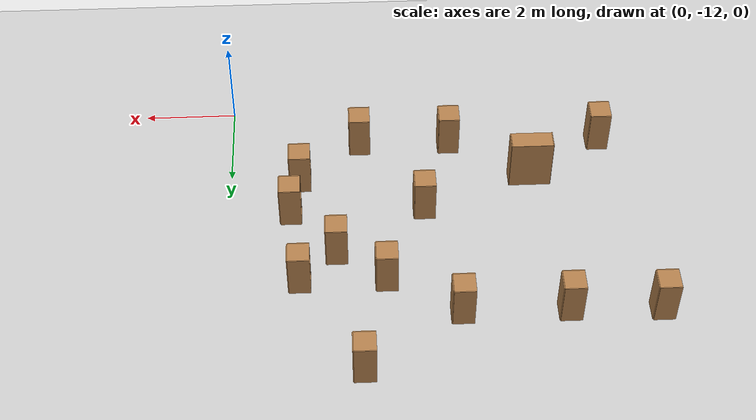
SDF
<sdf version="1.6">
 <world name="default">
  <model name="ground_plane">
   <static>1</static>
   <link name="link">
    <collision name="collision">
     <geometry><plane><normal>0 0 1</normal><size>100 100</size></plane></geometry>
     <surface><friction><ode><mu>100</mu><mu2>50</mu2></ode></friction></surface>
    </collision>
    <visual name="visual">
     <cast_shadows>0</cast_shadows>
     <geometry><plane><normal>0 0 1</normal><size>100 100</size></plane></geometry>
     <material>
      <script><uri>file://media/materials/scripts/gazebo.material</uri><name>Gazebo/Grey</name></script>
     </material>
    </visual>
   </link>
  </model>
  <model name="cabinet">
   <static>1</static>
   <link name="cabinet_bottom_plate">
    <inertial>
     <pose>0 0 -1 0 -0 0</pose>
     <inertia><ixx>2.05</ixx><ixy>0</ixy><ixz>0</ixz><iyy>2.05</iyy><iyz>0</iyz><izz>2.05</izz></inertia>
     <mass>25</mass>
    </inertial>
    <collision name="cabinet_bottom_plate_geom">
     <pose>0 0 0.01 0 -0 0</pose>
     <geometry><box><size>0.45 0.45 0.02</size></box></geometry>
    </collision>
    <visual name="cabinet_bottom_plate_geom_visual">
     <pose>0 0 0.01 0 -0 0</pose>
     <geometry><box><size>0.45 0.45 0.02</size></box></geometry>
     <material>
      <script><uri>file://media/materials/scripts/gazebo.material</uri><name>Gazebo/Wood</name></script>
     </material>
    </visual>
    <collision name="cabinet_bottom_plate_geom_cabinet_back_plate">
     <pose>0.235 0 0.51 0 -0 0</pose>
     <geometry><box><size>0.02 0.45 1.02</size></box></geometry>
    </collision>
    <visual name="cabinet_bottom_plate_geom_cabinet_back_plate_visual">
     <pose>0.235 0 0.51 0 -0 0</pose>
     <geometry><box><size>0.02 0.45 1.02</size></box></geometry>
     <material>
      <script><uri>file://media/materials/scripts/gazebo.material</uri><name>Gazebo/Wood</name></script>
     </material>
    </visual>
    <collision name="cabinet_bottom_plate_geom_cabinet_left_plate">
     <pose>0 0.235 0.51 0 -0 0</pose>
     <geometry><box><size>0.45 0.02 1.02</size></box></geometry>
    </collision>
    <visual name="cabinet_bottom_plate_geom_cabinet_left_plate_visual">
     <pose>0 0.235 0.51 0 -0 0</pose>
     <geometry><box><size>0.45 0.02 1.02</size></box></geometry>
     <material>
      <script><uri>file://media/materials/scripts/gazebo.material</uri><name>Gazebo/Wood</name></script>
     </material>
    </visual>
    <collision name="cabinet_bottom_plate_geom_cabinet_middle_plate">
     <pose>0 0 0.51 0 -0 0</pose>
     <geometry><box><size>0.45 0.45 0.02</size></box></geometry>
    </collision>
    <visual name="cabinet_bottom_plate_geom_cabinet_middle_plate_visual">
     <pose>0 0 0.51 0 -0 0</pose>
     <geometry><box><size>0.45 0.45 0.02</size></box></geometry>
     <material>
      <script><uri>file://media/materials/scripts/gazebo.material</uri><name>Gazebo/Wood</name></script>
     </material>
    </visual>
    <collision name="cabinet_bottom_plate_geom_cabinet_right_plate">
     <pose>0 -0.235 0.51 0 -0 0</pose>
     <geometry><box><size>0.45 0.02 1.02</size></box></geometry>
    </collision>
    <visual name="cabinet_bottom_plate_geom_cabinet_right_plate_visual">
     <pose>0 -0.235 0.51 0 -0 0</pose>
     <geometry><box><size>0.45 0.02 1.02</size></box></geometry>
     <material>
      <script><uri>file://media/materials/scripts/gazebo.material</uri><name>Gazebo/Wood</name></script>
     </material>
    </visual>
    <collision name="cabinet_bottom_plate_geom_cabinet_top_plate">
     <pose>0 0 1.01 0 -0 0</pose>
     <geometry><box><size>0.45 0.45 0.02</size></box></geometry>
    </collision>
    <visual name="cabinet_bottom_plate_geom_cabinet_top_plate_visual">
     <pose>0 0 1.01 0 -0 0</pose>
     <geometry><box><size>0.45 0.45 0.02</size></box></geometry>
     <material>
      <script><uri>file://media/materials/scripts/gazebo.material</uri><name>Gazebo/Wood</name></script>
     </material>
    </visual>
   </link>
   <pose>-8.18093 -10.8417 0 0 -0 0</pose>
  </model>
  <model name="bookshelf">
   <static>1</static>
   <link name="link">
    <inertial><mass>1</mass></inertial>
    <collision name="back">
     <pose>0 0.005 0.6 0 -0 0</pose>
     <geometry><box><size>0.9 0.01 1.2</size></box></geometry>
    </collision>
    <visual name="visual1">
     <pose>0 0.005 0.6 0 -0 0</pose>
     <geometry><box><size>0.9 0.01 1.2</size></box></geometry>
     <material>
      <script><uri>file://media/materials/scripts/gazebo.material</uri><name>Gazebo/Wood</name></script>
     </material>
    </visual>
    <collision name="left_side">
     <pose>0.45 -0.195 0.6 0 -0 0</pose>
     <geometry><box><size>0.02 0.4 1.2</size></box></geometry>
    </collision>
    <visual name="visual2">
     <pose>0.45 -0.195 0.6 0 -0 0</pose>
     <geometry><box><size>0.02 0.4 1.2</size></box></geometry>
     <material>
      <script><uri>file://media/materials/scripts/gazebo.material</uri><name>Gazebo/Wood</name></script>
     </material>
    </visual>
    <collision name="right_side">
     <pose>-0.45 -0.195 0.6 0 -0 0</pose>
     <geometry><box><size>0.02 0.4 1.2</size></box></geometry>
    </collision>
    <visual name="visual3">
     <pose>-0.45 -0.195 0.6 0 -0 0</pose>
     <geometry><box><size>0.02 0.4 1.2</size></box></geometry>
     <material>
      <script><uri>file://media/materials/scripts/gazebo.material</uri><name>Gazebo/Wood</name></script>
     </material>
    </visual>
    <collision name="bottom">
     <pose>0 -0.195 0.03 0 -0 0</pose>
     <geometry><box><size>0.88 0.4 0.06</size></box></geometry>
    </collision>
    <visual name="visual4">
     <pose>0 -0.195 0.03 0 -0 0</pose>
     <geometry><box><size>0.88 0.4 0.06</size></box></geometry>
     <material>
      <script><uri>file://media/materials/scripts/gazebo.material</uri><name>Gazebo/Wood</name></script>
     </material>
    </visual>
    <collision name="top">
     <pose>0 -0.195 1.19 0 -0 0</pose>
     <geometry><box><size>0.88 0.4 0.02</size></box></geometry>
    </collision>
    <visual name="visual5">
     <pose>0 -0.195 1.19 0 -0 0</pose>
     <geometry><box><size>0.88 0.4 0.02</size></box></geometry>
     <material>
      <script><uri>file://media/materials/scripts/gazebo.material</uri><name>Gazebo/Wood</name></script>
     </material>
    </visual>
    <collision name="low_shelf">
     <pose>0 -0.195 0.43 0 -0 0</pose>
     <geometry><box><size>0.88 0.4 0.02</size></box></geometry>
    </collision>
    <visual name="visual6">
     <pose>0 -0.195 0.43 0 -0 0</pose>
     <geometry><box><size>0.88 0.4 0.02</size></box></geometry>
     <material>
      <script><uri>file://media/materials/scripts/gazebo.material</uri><name>Gazebo/Wood</name></script>
     </material>
    </visual>
    <collision name="high_shelf">
     <pose>0 -0.195 0.8 0 -0 0</pose>
     <geometry><box><size>0.88 0.4 0.02</size></box></geometry>
    </collision>
    <visual name="visual7">
     <pose>0 -0.195 0.8 0 -0 0</pose>
     <geometry><box><size>0.88 0.4 0.02</size></box></geometry>
     <material>
      <script><uri>file://media/materials/scripts/gazebo.material</uri><name>Gazebo/Wood</name></script>
     </material>
    </visual>
   </link>
   <pose>-6.54125 -9.57718 0 0 -0 0</pose>
  </model>
  <model name="cabinet_0">
   <static>1</static>
   <link name="cabinet_bottom_plate">
    <inertial>
     <pose>0 0 -1 0 -0 0</pose>
     <inertia><ixx>2.05</ixx><ixy>0</ixy><ixz>0</ixz><iyy>2.05</iyy><iyz>0</iyz><izz>2.05</izz></inertia>
     <mass>25</mass>
    </inertial>
    <collision name="cabinet_bottom_plate_geom">
     <pose>0 0 0.01 0 -0 0</pose>
     <geometry><box><size>0.45 0.45 0.02</size></box></geometry>
    </collision>
    <visual name="cabinet_bottom_plate_geom_visual">
     <pose>0 0 0.01 0 -0 0</pose>
     <geometry><box><size>0.45 0.45 0.02</size></box></geometry>
     <material>
      <script><uri>file://media/materials/scripts/gazebo.material</uri><name>Gazebo/Wood</name></script>
     </material>
    </visual>
    <collision name="cabinet_bottom_plate_geom_cabinet_back_plate">
     <pose>0.235 0 0.51 0 -0 0</pose>
     <geometry><box><size>0.02 0.45 1.02</size></box></geometry>
    </collision>
    <visual name="cabinet_bottom_plate_geom_cabinet_back_plate_visual">
     <pose>0.235 0 0.51 0 -0 0</pose>
     <geometry><box><size>0.02 0.45 1.02</size></box></geometry>
     <material>
      <script><uri>file://media/materials/scripts/gazebo.material</uri><name>Gazebo/Wood</name></script>
     </material>
    </visual>
    <collision name="cabinet_bottom_plate_geom_cabinet_left_plate">
     <pose>0 0.235 0.51 0 -0 0</pose>
     <geometry><box><size>0.45 0.02 1.02</size></box></geometry>
    </collision>
    <visual name="cabinet_bottom_plate_geom_cabinet_left_plate_visual">
     <pose>0 0.235 0.51 0 -0 0</pose>
     <geometry><box><size>0.45 0.02 1.02</size></box></geometry>
     <material>
      <script><uri>file://media/materials/scripts/gazebo.material</uri><name>Gazebo/Wood</name></script>
     </material>
    </visual>
    <collision name="cabinet_bottom_plate_geom_cabinet_middle_plate">
     <pose>0 0 0.51 0 -0 0</pose>
     <geometry><box><size>0.45 0.45 0.02</size></box></geometry>
    </collision>
    <visual name="cabinet_bottom_plate_geom_cabinet_middle_plate_visual">
     <pose>0 0 0.51 0 -0 0</pose>
     <geometry><box><size>0.45 0.45 0.02</size></box></geometry>
     <material>
      <script><uri>file://media/materials/scripts/gazebo.material</uri><name>Gazebo/Wood</name></script>
     </material>
    </visual>
    <collision name="cabinet_bottom_plate_geom_cabinet_right_plate">
     <pose>0 -0.235 0.51 0 -0 0</pose>
     <geometry><box><size>0.45 0.02 1.02</size></box></geometry>
    </collision>
    <visual name="cabinet_bottom_plate_geom_cabinet_right_plate_visual">
     <pose>0 -0.235 0.51 0 -0 0</pose>
     <geometry><box><size>0.45 0.02 1.02</size></box></geometry>
     <material>
      <script><uri>file://media/materials/scripts/gazebo.material</uri><name>Gazebo/Wood</name></script>
     </material>
    </visual>
    <collision name="cabinet_bottom_plate_geom_cabinet_top_plate">
     <pose>0 0 1.01 0 -0 0</pose>
     <geometry><box><size>0.45 0.45 0.02</size></box></geometry>
    </collision>
    <visual name="cabinet_bottom_plate_geom_cabinet_top_plate_visual">
     <pose>0 0 1.01 0 -0 0</pose>
     <geometry><box><size>0.45 0.45 0.02</size></box></geometry>
     <material>
      <script><uri>file://media/materials/scripts/gazebo.material</uri><name>Gazebo/Wood</name></script>
     </material>
    </visual>
   </link>
   <pose>-4.82674 -10.8507 0 0 -0 0</pose>
  </model>
  <model name="cabinet_1">
   <static>1</static>
   <link name="cabinet_bottom_plate">
    <inertial>
     <pose>0 0 -1 0 -0 0</pose>
     <inertia><ixx>2.05</ixx><ixy>0</ixy><ixz>0</ixz><iyy>2.05</iyy><iyz>0</iyz><izz>2.05</izz></inertia>
     <mass>25</mass>
    </inertial>
    <collision name="cabinet_bottom_plate_geom">
     <pose>0 0 0.01 0 -0 0</pose>
     <geometry><box><size>0.45 0.45 0.02</size></box></geometry>
    </collision>
    <visual name="cabinet_bottom_plate_geom_visual">
     <pose>0 0 0.01 0 -0 0</pose>
     <geometry><box><size>0.45 0.45 0.02</size></box></geometry>
     <material>
      <script><uri>file://media/materials/scripts/gazebo.material</uri><name>Gazebo/Wood</name></script>
     </material>
    </visual>
    <collision name="cabinet_bottom_plate_geom_cabinet_back_plate">
     <pose>0.235 0 0.51 0 -0 0</pose>
     <geometry><box><size>0.02 0.45 1.02</size></box></geometry>
    </collision>
    <visual name="cabinet_bottom_plate_geom_cabinet_back_plate_visual">
     <pose>0.235 0 0.51 0 -0 0</pose>
     <geometry><box><size>0.02 0.45 1.02</size></box></geometry>
     <material>
      <script><uri>file://media/materials/scripts/gazebo.material</uri><name>Gazebo/Wood</name></script>
     </material>
    </visual>
    <collision name="cabinet_bottom_plate_geom_cabinet_left_plate">
     <pose>0 0.235 0.51 0 -0 0</pose>
     <geometry><box><size>0.45 0.02 1.02</size></box></geometry>
    </collision>
    <visual name="cabinet_bottom_plate_geom_cabinet_left_plate_visual">
     <pose>0 0.235 0.51 0 -0 0</pose>
     <geometry><box><size>0.45 0.02 1.02</size></box></geometry>
     <material>
      <script><uri>file://media/materials/scripts/gazebo.material</uri><name>Gazebo/Wood</name></script>
     </material>
    </visual>
    <collision name="cabinet_bottom_plate_geom_cabinet_middle_plate">
     <pose>0 0 0.51 0 -0 0</pose>
     <geometry><box><size>0.45 0.45 0.02</size></box></geometry>
    </collision>
    <visual name="cabinet_bottom_plate_geom_cabinet_middle_plate_visual">
     <pose>0 0 0.51 0 -0 0</pose>
     <geometry><box><size>0.45 0.45 0.02</size></box></geometry>
     <material>
      <script><uri>file://media/materials/scripts/gazebo.material</uri><name>Gazebo/Wood</name></script>
     </material>
    </visual>
    <collision name="cabinet_bottom_plate_geom_cabinet_right_plate">
     <pose>0 -0.235 0.51 0 -0 0</pose>
     <geometry><box><size>0.45 0.02 1.02</size></box></geometry>
    </collision>
    <visual name="cabinet_bottom_plate_geom_cabinet_right_plate_visual">
     <pose>0 -0.235 0.51 0 -0 0</pose>
     <geometry><box><size>0.45 0.02 1.02</size></box></geometry>
     <material>
      <script><uri>file://media/materials/scripts/gazebo.material</uri><name>Gazebo/Wood</name></script>
     </material>
    </visual>
    <collision name="cabinet_bottom_plate_geom_cabinet_top_plate">
     <pose>0 0 1.01 0 -0 0</pose>
     <geometry><box><size>0.45 0.45 0.02</size></box></geometry>
    </collision>
    <visual name="cabinet_bottom_plate_geom_cabinet_top_plate_visual">
     <pose>0 0 1.01 0 -0 0</pose>
     <geometry><box><size>0.45 0.45 0.02</size></box></geometry>
     <material>
      <script><uri>file://media/materials/scripts/gazebo.material</uri><name>Gazebo/Wood</name></script>
     </material>
    </visual>
   </link>
   <pose>-2.84449 -10.8692 0 0 -0 0</pose>
  </model>
  <model name="cabinet_2">
   <static>1</static>
   <link name="cabinet_bottom_plate">
    <inertial>
     <pose>0 0 -1 0 -0 0</pose>
     <inertia><ixx>2.05</ixx><ixy>0</ixy><ixz>0</ixz><iyy>2.05</iyy><iyz>0</iyz><izz>2.05</izz></inertia>
     <mass>25</mass>
    </inertial>
    <collision name="cabinet_bottom_plate_geom">
     <pose>0 0 0.01 0 -0 0</pose>
     <geometry><box><size>0.45 0.45 0.02</size></box></geometry>
    </collision>
    <visual name="cabinet_bottom_plate_geom_visual">
     <pose>0 0 0.01 0 -0 0</pose>
     <geometry><box><size>0.45 0.45 0.02</size></box></geometry>
     <material>
      <script><uri>file://media/materials/scripts/gazebo.material</uri><name>Gazebo/Wood</name></script>
     </material>
    </visual>
    <collision name="cabinet_bottom_plate_geom_cabinet_back_plate">
     <pose>0.235 0 0.51 0 -0 0</pose>
     <geometry><box><size>0.02 0.45 1.02</size></box></geometry>
    </collision>
    <visual name="cabinet_bottom_plate_geom_cabinet_back_plate_visual">
     <pose>0.235 0 0.51 0 -0 0</pose>
     <geometry><box><size>0.02 0.45 1.02</size></box></geometry>
     <material>
      <script><uri>file://media/materials/scripts/gazebo.material</uri><name>Gazebo/Wood</name></script>
     </material>
    </visual>
    <collision name="cabinet_bottom_plate_geom_cabinet_left_plate">
     <pose>0 0.235 0.51 0 -0 0</pose>
     <geometry><box><size>0.45 0.02 1.02</size></box></geometry>
    </collision>
    <visual name="cabinet_bottom_plate_geom_cabinet_left_plate_visual">
     <pose>0 0.235 0.51 0 -0 0</pose>
     <geometry><box><size>0.45 0.02 1.02</size></box></geometry>
     <material>
      <script><uri>file://media/materials/scripts/gazebo.material</uri><name>Gazebo/Wood</name></script>
     </material>
    </visual>
    <collision name="cabinet_bottom_plate_geom_cabinet_middle_plate">
     <pose>0 0 0.51 0 -0 0</pose>
     <geometry><box><size>0.45 0.45 0.02</size></box></geometry>
    </collision>
    <visual name="cabinet_bottom_plate_geom_cabinet_middle_plate_visual">
     <pose>0 0 0.51 0 -0 0</pose>
     <geometry><box><size>0.45 0.45 0.02</size></box></geometry>
     <material>
      <script><uri>file://media/materials/scripts/gazebo.material</uri><name>Gazebo/Wood</name></script>
     </material>
    </visual>
    <collision name="cabinet_bottom_plate_geom_cabinet_right_plate">
     <pose>0 -0.235 0.51 0 -0 0</pose>
     <geometry><box><size>0.45 0.02 1.02</size></box></geometry>
    </collision>
    <visual name="cabinet_bottom_plate_geom_cabinet_right_plate_visual">
     <pose>0 -0.235 0.51 0 -0 0</pose>
     <geometry><box><size>0.45 0.02 1.02</size></box></geometry>
     <material>
      <script><uri>file://media/materials/scripts/gazebo.material</uri><name>Gazebo/Wood</name></script>
     </material>
    </visual>
    <collision name="cabinet_bottom_plate_geom_cabinet_top_plate">
     <pose>0 0 1.01 0 -0 0</pose>
     <geometry><box><size>0.45 0.45 0.02</size></box></geometry>
    </collision>
    <visual name="cabinet_bottom_plate_geom_cabinet_top_plate_visual">
     <pose>0 0 1.01 0 -0 0</pose>
     <geometry><box><size>0.45 0.45 0.02</size></box></geometry>
     <material>
      <script><uri>file://media/materials/scripts/gazebo.material</uri><name>Gazebo/Wood</name></script>
     </material>
    </visual>
   </link>
   <pose>-1.52112 -9.79188 0 0 -0 0</pose>
  </model>
  <model name="cabinet_7">
   <static>1</static>
   <link name="cabinet_bottom_plate">
    <inertial>
     <pose>0 0 -1 0 -0 0</pose>
     <inertia><ixx>2.05</ixx><ixy>0</ixy><ixz>0</ixz><iyy>2.05</iyy><iyz>0</iyz><izz>2.05</izz></inertia>
     <mass>25</mass>
    </inertial>
    <collision name="cabinet_bottom_plate_geom">
     <pose>0 0 0.01 0 -0 0</pose>
     <geometry><box><size>0.45 0.45 0.02</size></box></geometry>
    </collision>
    <visual name="cabinet_bottom_plate_geom_visual">
     <pose>0 0 0.01 0 -0 0</pose>
     <geometry><box><size>0.45 0.45 0.02</size></box></geometry>
     <material>
      <script><uri>file://media/materials/scripts/gazebo.material</uri><name>Gazebo/Wood</name></script>
     </material>
    </visual>
    <collision name="cabinet_bottom_plate_geom_cabinet_back_plate">
     <pose>0.235 0 0.51 0 -0 0</pose>
     <geometry><box><size>0.02 0.45 1.02</size></box></geometry>
    </collision>
    <visual name="cabinet_bottom_plate_geom_cabinet_back_plate_visual">
     <pose>0.235 0 0.51 0 -0 0</pose>
     <geometry><box><size>0.02 0.45 1.02</size></box></geometry>
     <material>
      <script><uri>file://media/materials/scripts/gazebo.material</uri><name>Gazebo/Wood</name></script>
     </material>
    </visual>
    <collision name="cabinet_bottom_plate_geom_cabinet_left_plate">
     <pose>0 0.235 0.51 0 -0 0</pose>
     <geometry><box><size>0.45 0.02 1.02</size></box></geometry>
    </collision>
    <visual name="cabinet_bottom_plate_geom_cabinet_left_plate_visual">
     <pose>0 0.235 0.51 0 -0 0</pose>
     <geometry><box><size>0.45 0.02 1.02</size></box></geometry>
     <material>
      <script><uri>file://media/materials/scripts/gazebo.material</uri><name>Gazebo/Wood</name></script>
     </material>
    </visual>
    <collision name="cabinet_bottom_plate_geom_cabinet_middle_plate">
     <pose>0 0 0.51 0 -0 0</pose>
     <geometry><box><size>0.45 0.45 0.02</size></box></geometry>
    </collision>
    <visual name="cabinet_bottom_plate_geom_cabinet_middle_plate_visual">
     <pose>0 0 0.51 0 -0 0</pose>
     <geometry><box><size>0.45 0.45 0.02</size></box></geometry>
     <material>
      <script><uri>file://media/materials/scripts/gazebo.material</uri><name>Gazebo/Wood</name></script>
     </material>
    </visual>
    <collision name="cabinet_bottom_plate_geom_cabinet_right_plate">
     <pose>0 -0.235 0.51 0 -0 0</pose>
     <geometry><box><size>0.45 0.02 1.02</size></box></geometry>
    </collision>
    <visual name="cabinet_bottom_plate_geom_cabinet_right_plate_visual">
     <pose>0 -0.235 0.51 0 -0 0</pose>
     <geometry><box><size>0.45 0.02 1.02</size></box></geometry>
     <material>
      <script><uri>file://media/materials/scripts/gazebo.material</uri><name>Gazebo/Wood</name></script>
     </material>
    </visual>
    <collision name="cabinet_bottom_plate_geom_cabinet_top_plate">
     <pose>0 0 1.01 0 -0 0</pose>
     <geometry><box><size>0.45 0.45 0.02</size></box></geometry>
    </collision>
    <visual name="cabinet_bottom_plate_geom_cabinet_top_plate_visual">
     <pose>0 0 1.01 0 -0 0</pose>
     <geometry><box><size>0.45 0.45 0.02</size></box></geometry>
     <material>
      <script><uri>file://media/materials/scripts/gazebo.material</uri><name>Gazebo/Wood</name></script>
     </material>
    </visual>
   </link>
   <pose>-4.18838 -8.89335 0 0 -0 0</pose>
  </model>
  <model name="cabinet_8">
   <static>1</static>
   <link name="cabinet_bottom_plate">
    <inertial>
     <pose>0 0 -1 0 -0 0</pose>
     <inertia><ixx>2.05</ixx><ixy>0</ixy><ixz>0</ixz><iyy>2.05</iyy><iyz>0</iyz><izz>2.05</izz></inertia>
     <mass>25</mass>
    </inertial>
    <collision name="cabinet_bottom_plate_geom">
     <pose>0 0 0.01 0 -0 0</pose>
     <geometry><box><size>0.45 0.45 0.02</size></box></geometry>
    </collision>
    <visual name="cabinet_bottom_plate_geom_visual">
     <pose>0 0 0.01 0 -0 0</pose>
     <geometry><box><size>0.45 0.45 0.02</size></box></geometry>
     <material>
      <script><uri>file://media/materials/scripts/gazebo.material</uri><name>Gazebo/Wood</name></script>
     </material>
    </visual>
    <collision name="cabinet_bottom_plate_geom_cabinet_back_plate">
     <pose>0.235 0 0.51 0 -0 0</pose>
     <geometry><box><size>0.02 0.45 1.02</size></box></geometry>
    </collision>
    <visual name="cabinet_bottom_plate_geom_cabinet_back_plate_visual">
     <pose>0.235 0 0.51 0 -0 0</pose>
     <geometry><box><size>0.02 0.45 1.02</size></box></geometry>
     <material>
      <script><uri>file://media/materials/scripts/gazebo.material</uri><name>Gazebo/Wood</name></script>
     </material>
    </visual>
    <collision name="cabinet_bottom_plate_geom_cabinet_left_plate">
     <pose>0 0.235 0.51 0 -0 0</pose>
     <geometry><box><size>0.45 0.02 1.02</size></box></geometry>
    </collision>
    <visual name="cabinet_bottom_plate_geom_cabinet_left_plate_visual">
     <pose>0 0.235 0.51 0 -0 0</pose>
     <geometry><box><size>0.45 0.02 1.02</size></box></geometry>
     <material>
      <script><uri>file://media/materials/scripts/gazebo.material</uri><name>Gazebo/Wood</name></script>
     </material>
    </visual>
    <collision name="cabinet_bottom_plate_geom_cabinet_middle_plate">
     <pose>0 0 0.51 0 -0 0</pose>
     <geometry><box><size>0.45 0.45 0.02</size></box></geometry>
    </collision>
    <visual name="cabinet_bottom_plate_geom_cabinet_middle_plate_visual">
     <pose>0 0 0.51 0 -0 0</pose>
     <geometry><box><size>0.45 0.45 0.02</size></box></geometry>
     <material>
      <script><uri>file://media/materials/scripts/gazebo.material</uri><name>Gazebo/Wood</name></script>
     </material>
    </visual>
    <collision name="cabinet_bottom_plate_geom_cabinet_right_plate">
     <pose>0 -0.235 0.51 0 -0 0</pose>
     <geometry><box><size>0.45 0.02 1.02</size></box></geometry>
    </collision>
    <visual name="cabinet_bottom_plate_geom_cabinet_right_plate_visual">
     <pose>0 -0.235 0.51 0 -0 0</pose>
     <geometry><box><size>0.45 0.02 1.02</size></box></geometry>
     <material>
      <script><uri>file://media/materials/scripts/gazebo.material</uri><name>Gazebo/Wood</name></script>
     </material>
    </visual>
    <collision name="cabinet_bottom_plate_geom_cabinet_top_plate">
     <pose>0 0 1.01 0 -0 0</pose>
     <geometry><box><size>0.45 0.45 0.02</size></box></geometry>
    </collision>
    <visual name="cabinet_bottom_plate_geom_cabinet_top_plate_visual">
     <pose>0 0 1.01 0 -0 0</pose>
     <geometry><box><size>0.45 0.45 0.02</size></box></geometry>
     <material>
      <script><uri>file://media/materials/scripts/gazebo.material</uri><name>Gazebo/Wood</name></script>
     </material>
    </visual>
   </link>
   <pose>-2.28352 -7.68561 0 0 -0 0</pose>
  </model>
  <model name="cabinet_9">
   <static>1</static>
   <link name="cabinet_bottom_plate">
    <inertial>
     <pose>0 0 -1 0 -0 0</pose>
     <inertia><ixx>2.05</ixx><ixy>0</ixy><ixz>0</ixz><iyy>2.05</iyy><iyz>0</iyz><izz>2.05</izz></inertia>
     <mass>25</mass>
    </inertial>
    <collision name="cabinet_bottom_plate_geom">
     <pose>0 0 0.01 0 -0 0</pose>
     <geometry><box><size>0.45 0.45 0.02</size></box></geometry>
    </collision>
    <visual name="cabinet_bottom_plate_geom_visual">
     <pose>0 0 0.01 0 -0 0</pose>
     <geometry><box><size>0.45 0.45 0.02</size></box></geometry>
     <material>
      <script><uri>file://media/materials/scripts/gazebo.material</uri><name>Gazebo/Wood</name></script>
     </material>
    </visual>
    <collision name="cabinet_bottom_plate_geom_cabinet_back_plate">
     <pose>0.235 0 0.51 0 -0 0</pose>
     <geometry><box><size>0.02 0.45 1.02</size></box></geometry>
    </collision>
    <visual name="cabinet_bottom_plate_geom_cabinet_back_plate_visual">
     <pose>0.235 0 0.51 0 -0 0</pose>
     <geometry><box><size>0.02 0.45 1.02</size></box></geometry>
     <material>
      <script><uri>file://media/materials/scripts/gazebo.material</uri><name>Gazebo/Wood</name></script>
     </material>
    </visual>
    <collision name="cabinet_bottom_plate_geom_cabinet_left_plate">
     <pose>0 0.235 0.51 0 -0 0</pose>
     <geometry><box><size>0.45 0.02 1.02</size></box></geometry>
    </collision>
    <visual name="cabinet_bottom_plate_geom_cabinet_left_plate_visual">
     <pose>0 0.235 0.51 0 -0 0</pose>
     <geometry><box><size>0.45 0.02 1.02</size></box></geometry>
     <material>
      <script><uri>file://media/materials/scripts/gazebo.material</uri><name>Gazebo/Wood</name></script>
     </material>
    </visual>
    <collision name="cabinet_bottom_plate_geom_cabinet_middle_plate">
     <pose>0 0 0.51 0 -0 0</pose>
     <geometry><box><size>0.45 0.45 0.02</size></box></geometry>
    </collision>
    <visual name="cabinet_bottom_plate_geom_cabinet_middle_plate_visual">
     <pose>0 0 0.51 0 -0 0</pose>
     <geometry><box><size>0.45 0.45 0.02</size></box></geometry>
     <material>
      <script><uri>file://media/materials/scripts/gazebo.material</uri><name>Gazebo/Wood</name></script>
     </material>
    </visual>
    <collision name="cabinet_bottom_plate_geom_cabinet_right_plate">
     <pose>0 -0.235 0.51 0 -0 0</pose>
     <geometry><box><size>0.45 0.02 1.02</size></box></geometry>
    </collision>
    <visual name="cabinet_bottom_plate_geom_cabinet_right_plate_visual">
     <pose>0 -0.235 0.51 0 -0 0</pose>
     <geometry><box><size>0.45 0.02 1.02</size></box></geometry>
     <material>
      <script><uri>file://media/materials/scripts/gazebo.material</uri><name>Gazebo/Wood</name></script>
     </material>
    </visual>
    <collision name="cabinet_bottom_plate_geom_cabinet_top_plate">
     <pose>0 0 1.01 0 -0 0</pose>
     <geometry><box><size>0.45 0.45 0.02</size></box></geometry>
    </collision>
    <visual name="cabinet_bottom_plate_geom_cabinet_top_plate_visual">
     <pose>0 0 1.01 0 -0 0</pose>
     <geometry><box><size>0.45 0.45 0.02</size></box></geometry>
     <material>
      <script><uri>file://media/materials/scripts/gazebo.material</uri><name>Gazebo/Wood</name></script>
     </material>
    </visual>
   </link>
   <pose>-1.31459 -8.84194 0 0 -0 0</pose>
  </model>
  <model name="cabinet_16">
   <static>1</static>
   <link name="cabinet_bottom_plate">
    <inertial>
     <pose>0 0 -1 0 -0 0</pose>
     <inertia><ixx>2.05</ixx><ixy>0</ixy><ixz>0</ixz><iyy>2.05</iyy><iyz>0</iyz><izz>2.05</izz></inertia>
     <mass>25</mass>
    </inertial>
    <collision name="cabinet_bottom_plate_geom">
     <pose>0 0 0.01 0 -0 0</pose>
     <geometry><box><size>0.45 0.45 0.02</size></box></geometry>
    </collision>
    <visual name="cabinet_bottom_plate_geom_visual">
     <pose>0 0 0.01 0 -0 0</pose>
     <geometry><box><size>0.45 0.45 0.02</size></box></geometry>
     <material>
      <script><uri>file://media/materials/scripts/gazebo.material</uri><name>Gazebo/Wood</name></script>
     </material>
    </visual>
    <collision name="cabinet_bottom_plate_geom_cabinet_back_plate">
     <pose>0.235 0 0.51 0 -0 0</pose>
     <geometry><box><size>0.02 0.45 1.02</size></box></geometry>
    </collision>
    <visual name="cabinet_bottom_plate_geom_cabinet_back_plate_visual">
     <pose>0.235 0 0.51 0 -0 0</pose>
     <geometry><box><size>0.02 0.45 1.02</size></box></geometry>
     <material>
      <script><uri>file://media/materials/scripts/gazebo.material</uri><name>Gazebo/Wood</name></script>
     </material>
    </visual>
    <collision name="cabinet_bottom_plate_geom_cabinet_left_plate">
     <pose>0 0.235 0.51 0 -0 0</pose>
     <geometry><box><size>0.45 0.02 1.02</size></box></geometry>
    </collision>
    <visual name="cabinet_bottom_plate_geom_cabinet_left_plate_visual">
     <pose>0 0.235 0.51 0 -0 0</pose>
     <geometry><box><size>0.45 0.02 1.02</size></box></geometry>
     <material>
      <script><uri>file://media/materials/scripts/gazebo.material</uri><name>Gazebo/Wood</name></script>
     </material>
    </visual>
    <collision name="cabinet_bottom_plate_geom_cabinet_middle_plate">
     <pose>0 0 0.51 0 -0 0</pose>
     <geometry><box><size>0.45 0.45 0.02</size></box></geometry>
    </collision>
    <visual name="cabinet_bottom_plate_geom_cabinet_middle_plate_visual">
     <pose>0 0 0.51 0 -0 0</pose>
     <geometry><box><size>0.45 0.45 0.02</size></box></geometry>
     <material>
      <script><uri>file://media/materials/scripts/gazebo.material</uri><name>Gazebo/Wood</name></script>
     </material>
    </visual>
    <collision name="cabinet_bottom_plate_geom_cabinet_right_plate">
     <pose>0 -0.235 0.51 0 -0 0</pose>
     <geometry><box><size>0.45 0.02 1.02</size></box></geometry>
    </collision>
    <visual name="cabinet_bottom_plate_geom_cabinet_right_plate_visual">
     <pose>0 -0.235 0.51 0 -0 0</pose>
     <geometry><box><size>0.45 0.02 1.02</size></box></geometry>
     <material>
      <script><uri>file://media/materials/scripts/gazebo.material</uri><name>Gazebo/Wood</name></script>
     </material>
    </visual>
    <collision name="cabinet_bottom_plate_geom_cabinet_top_plate">
     <pose>0 0 1.01 0 -0 0</pose>
     <geometry><box><size>0.45 0.45 0.02</size></box></geometry>
    </collision>
    <visual name="cabinet_bottom_plate_geom_cabinet_top_plate_visual">
     <pose>0 0 1.01 0 -0 0</pose>
     <geometry><box><size>0.45 0.45 0.02</size></box></geometry>
     <material>
      <script><uri>file://media/materials/scripts/gazebo.material</uri><name>Gazebo/Wood</name></script>
     </material>
    </visual>
   </link>
   <pose>-8.87842 -5.96708 0 0 -0 0</pose>
  </model>
  <model name="cabinet_17">
   <static>1</static>
   <link name="cabinet_bottom_plate">
    <inertial>
     <pose>0 0 -1 0 -0 0</pose>
     <inertia><ixx>2.05</ixx><ixy>0</ixy><ixz>0</ixz><iyy>2.05</iyy><iyz>0</iyz><izz>2.05</izz></inertia>
     <mass>25</mass>
    </inertial>
    <collision name="cabinet_bottom_plate_geom">
     <pose>0 0 0.01 0 -0 0</pose>
     <geometry><box><size>0.45 0.45 0.02</size></box></geometry>
    </collision>
    <visual name="cabinet_bottom_plate_geom_visual">
     <pose>0 0 0.01 0 -0 0</pose>
     <geometry><box><size>0.45 0.45 0.02</size></box></geometry>
     <material>
      <script><uri>file://media/materials/scripts/gazebo.material</uri><name>Gazebo/Wood</name></script>
     </material>
    </visual>
    <collision name="cabinet_bottom_plate_geom_cabinet_back_plate">
     <pose>0.235 0 0.51 0 -0 0</pose>
     <geometry><box><size>0.02 0.45 1.02</size></box></geometry>
    </collision>
    <visual name="cabinet_bottom_plate_geom_cabinet_back_plate_visual">
     <pose>0.235 0 0.51 0 -0 0</pose>
     <geometry><box><size>0.02 0.45 1.02</size></box></geometry>
     <material>
      <script><uri>file://media/materials/scripts/gazebo.material</uri><name>Gazebo/Wood</name></script>
     </material>
    </visual>
    <collision name="cabinet_bottom_plate_geom_cabinet_left_plate">
     <pose>0 0.235 0.51 0 -0 0</pose>
     <geometry><box><size>0.45 0.02 1.02</size></box></geometry>
    </collision>
    <visual name="cabinet_bottom_plate_geom_cabinet_left_plate_visual">
     <pose>0 0.235 0.51 0 -0 0</pose>
     <geometry><box><size>0.45 0.02 1.02</size></box></geometry>
     <material>
      <script><uri>file://media/materials/scripts/gazebo.material</uri><name>Gazebo/Wood</name></script>
     </material>
    </visual>
    <collision name="cabinet_bottom_plate_geom_cabinet_middle_plate">
     <pose>0 0 0.51 0 -0 0</pose>
     <geometry><box><size>0.45 0.45 0.02</size></box></geometry>
    </collision>
    <visual name="cabinet_bottom_plate_geom_cabinet_middle_plate_visual">
     <pose>0 0 0.51 0 -0 0</pose>
     <geometry><box><size>0.45 0.45 0.02</size></box></geometry>
     <material>
      <script><uri>file://media/materials/scripts/gazebo.material</uri><name>Gazebo/Wood</name></script>
     </material>
    </visual>
    <collision name="cabinet_bottom_plate_geom_cabinet_right_plate">
     <pose>0 -0.235 0.51 0 -0 0</pose>
     <geometry><box><size>0.45 0.02 1.02</size></box></geometry>
    </collision>
    <visual name="cabinet_bottom_plate_geom_cabinet_right_plate_visual">
     <pose>0 -0.235 0.51 0 -0 0</pose>
     <geometry><box><size>0.45 0.02 1.02</size></box></geometry>
     <material>
      <script><uri>file://media/materials/scripts/gazebo.material</uri><name>Gazebo/Wood</name></script>
     </material>
    </visual>
    <collision name="cabinet_bottom_plate_geom_cabinet_top_plate">
     <pose>0 0 1.01 0 -0 0</pose>
     <geometry><box><size>0.45 0.45 0.02</size></box></geometry>
    </collision>
    <visual name="cabinet_bottom_plate_geom_cabinet_top_plate_visual">
     <pose>0 0 1.01 0 -0 0</pose>
     <geometry><box><size>0.45 0.45 0.02</size></box></geometry>
     <material>
      <script><uri>file://media/materials/scripts/gazebo.material</uri><name>Gazebo/Wood</name></script>
     </material>
    </visual>
   </link>
   <pose>-6.99773 -6.01685 0 0 -0 0</pose>
  </model>
  <model name="cabinet_18">
   <static>1</static>
   <link name="cabinet_bottom_plate">
    <inertial>
     <pose>0 0 -1 0 -0 0</pose>
     <inertia><ixx>2.05</ixx><ixy>0</ixy><ixz>0</ixz><iyy>2.05</iyy><iyz>0</iyz><izz>2.05</izz></inertia>
     <mass>25</mass>
    </inertial>
    <collision name="cabinet_bottom_plate_geom">
     <pose>0 0 0.01 0 -0 0</pose>
     <geometry><box><size>0.45 0.45 0.02</size></box></geometry>
    </collision>
    <visual name="cabinet_bottom_plate_geom_visual">
     <pose>0 0 0.01 0 -0 0</pose>
     <geometry><box><size>0.45 0.45 0.02</size></box></geometry>
     <material>
      <script><uri>file://media/materials/scripts/gazebo.material</uri><name>Gazebo/Wood</name></script>
     </material>
    </visual>
    <collision name="cabinet_bottom_plate_geom_cabinet_back_plate">
     <pose>0.235 0 0.51 0 -0 0</pose>
     <geometry><box><size>0.02 0.45 1.02</size></box></geometry>
    </collision>
    <visual name="cabinet_bottom_plate_geom_cabinet_back_plate_visual">
     <pose>0.235 0 0.51 0 -0 0</pose>
     <geometry><box><size>0.02 0.45 1.02</size></box></geometry>
     <material>
      <script><uri>file://media/materials/scripts/gazebo.material</uri><name>Gazebo/Wood</name></script>
     </material>
    </visual>
    <collision name="cabinet_bottom_plate_geom_cabinet_left_plate">
     <pose>0 0.235 0.51 0 -0 0</pose>
     <geometry><box><size>0.45 0.02 1.02</size></box></geometry>
    </collision>
    <visual name="cabinet_bottom_plate_geom_cabinet_left_plate_visual">
     <pose>0 0.235 0.51 0 -0 0</pose>
     <geometry><box><size>0.45 0.02 1.02</size></box></geometry>
     <material>
      <script><uri>file://media/materials/scripts/gazebo.material</uri><name>Gazebo/Wood</name></script>
     </material>
    </visual>
    <collision name="cabinet_bottom_plate_geom_cabinet_middle_plate">
     <pose>0 0 0.51 0 -0 0</pose>
     <geometry><box><size>0.45 0.45 0.02</size></box></geometry>
    </collision>
    <visual name="cabinet_bottom_plate_geom_cabinet_middle_plate_visual">
     <pose>0 0 0.51 0 -0 0</pose>
     <geometry><box><size>0.45 0.45 0.02</size></box></geometry>
     <material>
      <script><uri>file://media/materials/scripts/gazebo.material</uri><name>Gazebo/Wood</name></script>
     </material>
    </visual>
    <collision name="cabinet_bottom_plate_geom_cabinet_right_plate">
     <pose>0 -0.235 0.51 0 -0 0</pose>
     <geometry><box><size>0.45 0.02 1.02</size></box></geometry>
    </collision>
    <visual name="cabinet_bottom_plate_geom_cabinet_right_plate_visual">
     <pose>0 -0.235 0.51 0 -0 0</pose>
     <geometry><box><size>0.45 0.02 1.02</size></box></geometry>
     <material>
      <script><uri>file://media/materials/scripts/gazebo.material</uri><name>Gazebo/Wood</name></script>
     </material>
    </visual>
    <collision name="cabinet_bottom_plate_geom_cabinet_top_plate">
     <pose>0 0 1.01 0 -0 0</pose>
     <geometry><box><size>0.45 0.45 0.02</size></box></geometry>
    </collision>
    <visual name="cabinet_bottom_plate_geom_cabinet_top_plate_visual">
     <pose>0 0 1.01 0 -0 0</pose>
     <geometry><box><size>0.45 0.45 0.02</size></box></geometry>
     <material>
      <script><uri>file://media/materials/scripts/gazebo.material</uri><name>Gazebo/Wood</name></script>
     </material>
    </visual>
   </link>
   <pose>-4.80646 -6.02307 0 0 -0 0</pose>
  </model>
  <model name="cabinet_19">
   <static>1</static>
   <link name="cabinet_bottom_plate">
    <inertial>
     <pose>0 0 -1 0 -0 0</pose>
     <inertia><ixx>2.05</ixx><ixy>0</ixy><ixz>0</ixz><iyy>2.05</iyy><iyz>0</iyz><izz>2.05</izz></inertia>
     <mass>25</mass>
    </inertial>
    <collision name="cabinet_bottom_plate_geom">
     <pose>0 0 0.01 0 -0 0</pose>
     <geometry><box><size>0.45 0.45 0.02</size></box></geometry>
    </collision>
    <visual name="cabinet_bottom_plate_geom_visual">
     <pose>0 0 0.01 0 -0 0</pose>
     <geometry><box><size>0.45 0.45 0.02</size></box></geometry>
     <material>
      <script><uri>file://media/materials/scripts/gazebo.material</uri><name>Gazebo/Wood</name></script>
     </material>
    </visual>
    <collision name="cabinet_bottom_plate_geom_cabinet_back_plate">
     <pose>0.235 0 0.51 0 -0 0</pose>
     <geometry><box><size>0.02 0.45 1.02</size></box></geometry>
    </collision>
    <visual name="cabinet_bottom_plate_geom_cabinet_back_plate_visual">
     <pose>0.235 0 0.51 0 -0 0</pose>
     <geometry><box><size>0.02 0.45 1.02</size></box></geometry>
     <material>
      <script><uri>file://media/materials/scripts/gazebo.material</uri><name>Gazebo/Wood</name></script>
     </material>
    </visual>
    <collision name="cabinet_bottom_plate_geom_cabinet_left_plate">
     <pose>0 0.235 0.51 0 -0 0</pose>
     <geometry><box><size>0.45 0.02 1.02</size></box></geometry>
    </collision>
    <visual name="cabinet_bottom_plate_geom_cabinet_left_plate_visual">
     <pose>0 0.235 0.51 0 -0 0</pose>
     <geometry><box><size>0.45 0.02 1.02</size></box></geometry>
     <material>
      <script><uri>file://media/materials/scripts/gazebo.material</uri><name>Gazebo/Wood</name></script>
     </material>
    </visual>
    <collision name="cabinet_bottom_plate_geom_cabinet_middle_plate">
     <pose>0 0 0.51 0 -0 0</pose>
     <geometry><box><size>0.45 0.45 0.02</size></box></geometry>
    </collision>
    <visual name="cabinet_bottom_plate_geom_cabinet_middle_plate_visual">
     <pose>0 0 0.51 0 -0 0</pose>
     <geometry><box><size>0.45 0.45 0.02</size></box></geometry>
     <material>
      <script><uri>file://media/materials/scripts/gazebo.material</uri><name>Gazebo/Wood</name></script>
     </material>
    </visual>
    <collision name="cabinet_bottom_plate_geom_cabinet_right_plate">
     <pose>0 -0.235 0.51 0 -0 0</pose>
     <geometry><box><size>0.45 0.02 1.02</size></box></geometry>
    </collision>
    <visual name="cabinet_bottom_plate_geom_cabinet_right_plate_visual">
     <pose>0 -0.235 0.51 0 -0 0</pose>
     <geometry><box><size>0.45 0.02 1.02</size></box></geometry>
     <material>
      <script><uri>file://media/materials/scripts/gazebo.material</uri><name>Gazebo/Wood</name></script>
     </material>
    </visual>
    <collision name="cabinet_bottom_plate_geom_cabinet_top_plate">
     <pose>0 0 1.01 0 -0 0</pose>
     <geometry><box><size>0.45 0.45 0.02</size></box></geometry>
    </collision>
    <visual name="cabinet_bottom_plate_geom_cabinet_top_plate_visual">
     <pose>0 0 1.01 0 -0 0</pose>
     <geometry><box><size>0.45 0.45 0.02</size></box></geometry>
     <material>
      <script><uri>file://media/materials/scripts/gazebo.material</uri><name>Gazebo/Wood</name></script>
     </material>
    </visual>
   </link>
   <pose>-3.30222 -6.92967 0 0 -0 0</pose>
  </model>
  <model name="cabinet_20">
   <static>1</static>
   <link name="cabinet_bottom_plate">
    <inertial>
     <pose>0 0 -1 0 -0 0</pose>
     <inertia><ixx>2.05</ixx><ixy>0</ixy><ixz>0</ixz><iyy>2.05</iyy><iyz>0</iyz><izz>2.05</izz></inertia>
     <mass>25</mass>
    </inertial>
    <collision name="cabinet_bottom_plate_geom">
     <pose>0 0 0.01 0 -0 0</pose>
     <geometry><box><size>0.45 0.45 0.02</size></box></geometry>
    </collision>
    <visual name="cabinet_bottom_plate_geom_visual">
     <pose>0 0 0.01 0 -0 0</pose>
     <geometry><box><size>0.45 0.45 0.02</size></box></geometry>
     <material>
      <script><uri>file://media/materials/scripts/gazebo.material</uri><name>Gazebo/Wood</name></script>
     </material>
    </visual>
    <collision name="cabinet_bottom_plate_geom_cabinet_back_plate">
     <pose>0.235 0 0.51 0 -0 0</pose>
     <geometry><box><size>0.02 0.45 1.02</size></box></geometry>
    </collision>
    <visual name="cabinet_bottom_plate_geom_cabinet_back_plate_visual">
     <pose>0.235 0 0.51 0 -0 0</pose>
     <geometry><box><size>0.02 0.45 1.02</size></box></geometry>
     <material>
      <script><uri>file://media/materials/scripts/gazebo.material</uri><name>Gazebo/Wood</name></script>
     </material>
    </visual>
    <collision name="cabinet_bottom_plate_geom_cabinet_left_plate">
     <pose>0 0.235 0.51 0 -0 0</pose>
     <geometry><box><size>0.45 0.02 1.02</size></box></geometry>
    </collision>
    <visual name="cabinet_bottom_plate_geom_cabinet_left_plate_visual">
     <pose>0 0.235 0.51 0 -0 0</pose>
     <geometry><box><size>0.45 0.02 1.02</size></box></geometry>
     <material>
      <script><uri>file://media/materials/scripts/gazebo.material</uri><name>Gazebo/Wood</name></script>
     </material>
    </visual>
    <collision name="cabinet_bottom_plate_geom_cabinet_middle_plate">
     <pose>0 0 0.51 0 -0 0</pose>
     <geometry><box><size>0.45 0.45 0.02</size></box></geometry>
    </collision>
    <visual name="cabinet_bottom_plate_geom_cabinet_middle_plate_visual">
     <pose>0 0 0.51 0 -0 0</pose>
     <geometry><box><size>0.45 0.45 0.02</size></box></geometry>
     <material>
      <script><uri>file://media/materials/scripts/gazebo.material</uri><name>Gazebo/Wood</name></script>
     </material>
    </visual>
    <collision name="cabinet_bottom_plate_geom_cabinet_right_plate">
     <pose>0 -0.235 0.51 0 -0 0</pose>
     <geometry><box><size>0.45 0.02 1.02</size></box></geometry>
    </collision>
    <visual name="cabinet_bottom_plate_geom_cabinet_right_plate_visual">
     <pose>0 -0.235 0.51 0 -0 0</pose>
     <geometry><box><size>0.45 0.02 1.02</size></box></geometry>
     <material>
      <script><uri>file://media/materials/scripts/gazebo.material</uri><name>Gazebo/Wood</name></script>
     </material>
    </visual>
    <collision name="cabinet_bottom_plate_geom_cabinet_top_plate">
     <pose>0 0 1.01 0 -0 0</pose>
     <geometry><box><size>0.45 0.45 0.02</size></box></geometry>
    </collision>
    <visual name="cabinet_bottom_plate_geom_cabinet_top_plate_visual">
     <pose>0 0 1.01 0 -0 0</pose>
     <geometry><box><size>0.45 0.45 0.02</size></box></geometry>
     <material>
      <script><uri>file://media/materials/scripts/gazebo.material</uri><name>Gazebo/Wood</name></script>
     </material>
    </visual>
   </link>
   <pose>-1.50254 -6.94891 0 0 -0 0</pose>
  </model>
  <model name="cabinet_25">
   <static>1</static>
   <link name="cabinet_bottom_plate">
    <inertial>
     <pose>0 0 -1 0 -0 0</pose>
     <inertia><ixx>2.05</ixx><ixy>0</ixy><ixz>0</ixz><iyy>2.05</iyy><iyz>0</iyz><izz>2.05</izz></inertia>
     <mass>25</mass>
    </inertial>
    <collision name="cabinet_bottom_plate_geom">
     <pose>0 0 0.01 0 -0 0</pose>
     <geometry><box><size>0.45 0.45 0.02</size></box></geometry>
    </collision>
    <visual name="cabinet_bottom_plate_geom_visual">
     <pose>0 0 0.01 0 -0 0</pose>
     <geometry><box><size>0.45 0.45 0.02</size></box></geometry>
     <material>
      <script><uri>file://media/materials/scripts/gazebo.material</uri><name>Gazebo/Wood</name></script>
     </material>
    </visual>
    <collision name="cabinet_bottom_plate_geom_cabinet_back_plate">
     <pose>0.235 0 0.51 0 -0 0</pose>
     <geometry><box><size>0.02 0.45 1.02</size></box></geometry>
    </collision>
    <visual name="cabinet_bottom_plate_geom_cabinet_back_plate_visual">
     <pose>0.235 0 0.51 0 -0 0</pose>
     <geometry><box><size>0.02 0.45 1.02</size></box></geometry>
     <material>
      <script><uri>file://media/materials/scripts/gazebo.material</uri><name>Gazebo/Wood</name></script>
     </material>
    </visual>
    <collision name="cabinet_bottom_plate_geom_cabinet_left_plate">
     <pose>0 0.235 0.51 0 -0 0</pose>
     <geometry><box><size>0.45 0.02 1.02</size></box></geometry>
    </collision>
    <visual name="cabinet_bottom_plate_geom_cabinet_left_plate_visual">
     <pose>0 0.235 0.51 0 -0 0</pose>
     <geometry><box><size>0.45 0.02 1.02</size></box></geometry>
     <material>
      <script><uri>file://media/materials/scripts/gazebo.material</uri><name>Gazebo/Wood</name></script>
     </material>
    </visual>
    <collision name="cabinet_bottom_plate_geom_cabinet_middle_plate">
     <pose>0 0 0.51 0 -0 0</pose>
     <geometry><box><size>0.45 0.45 0.02</size></box></geometry>
    </collision>
    <visual name="cabinet_bottom_plate_geom_cabinet_middle_plate_visual">
     <pose>0 0 0.51 0 -0 0</pose>
     <geometry><box><size>0.45 0.45 0.02</size></box></geometry>
     <material>
      <script><uri>file://media/materials/scripts/gazebo.material</uri><name>Gazebo/Wood</name></script>
     </material>
    </visual>
    <collision name="cabinet_bottom_plate_geom_cabinet_right_plate">
     <pose>0 -0.235 0.51 0 -0 0</pose>
     <geometry><box><size>0.45 0.02 1.02</size></box></geometry>
    </collision>
    <visual name="cabinet_bottom_plate_geom_cabinet_right_plate_visual">
     <pose>0 -0.235 0.51 0 -0 0</pose>
     <geometry><box><size>0.45 0.02 1.02</size></box></geometry>
     <material>
      <script><uri>file://media/materials/scripts/gazebo.material</uri><name>Gazebo/Wood</name></script>
     </material>
    </visual>
    <collision name="cabinet_bottom_plate_geom_cabinet_top_plate">
     <pose>0 0 1.01 0 -0 0</pose>
     <geometry><box><size>0.45 0.45 0.02</size></box></geometry>
    </collision>
    <visual name="cabinet_bottom_plate_geom_cabinet_top_plate_visual">
     <pose>0 0 1.01 0 -0 0</pose>
     <geometry><box><size>0.45 0.45 0.02</size></box></geometry>
     <material>
      <script><uri>file://media/materials/scripts/gazebo.material</uri><name>Gazebo/Wood</name></script>
     </material>
    </visual>
   </link>
   <pose>-2.78301 -4.66421 0 0 -0 0</pose>
  </model>
 </world>
</sdf>
